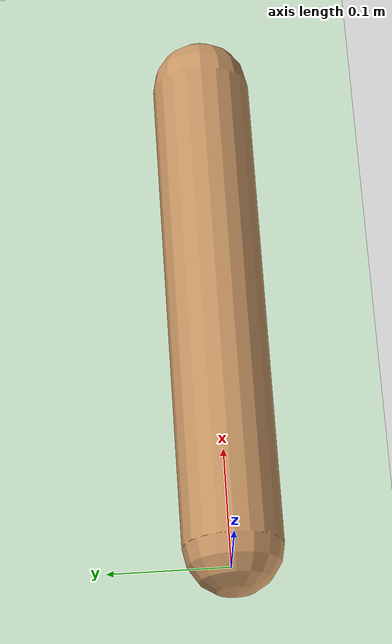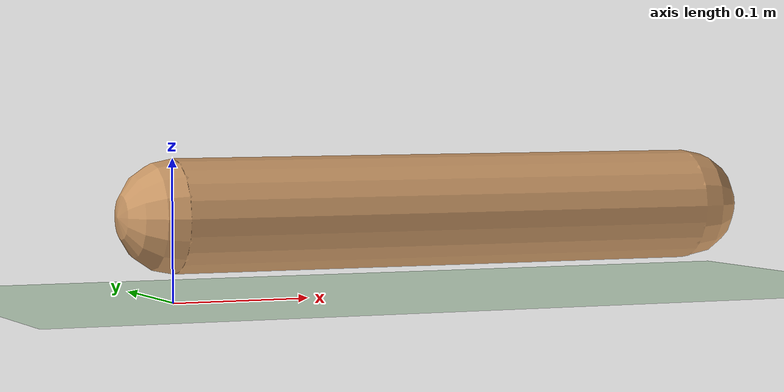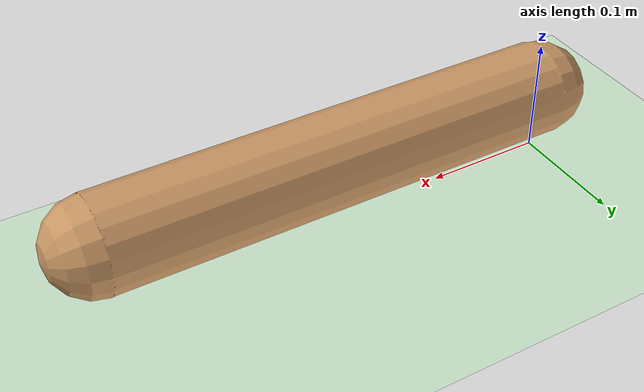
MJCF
<mujoco model="example">
<!-- 色の設定 -->
  <default>
    <geom rgba=".8 .6 .4 1"/>
  </default>

  <asset>
    <texture type="skybox" builtin="gradient" rgb1="1 1 1" rgb2=".6 .8 1" width="256" height="256"/>
  </asset>
<!-- x,y,z: 横、奥、高さ -->
  <worldbody>

    <geom pos="0 0 0" name="floor" type="plane" size="5 5 0.1" rgba="0.8 0.9 0.8 1"/>
    <light pos="0 1 1" dir="0 -1 -1" diffuse="1 1 1"/>
    <body pos="0 0 0.06">
      <joint name ="shoulder" type="hinge" axis="0 0 1" range="0 90"/>
      <geom type="capsule" size="0.04" fromto="0 0 0  .4 0 0" mass="3.0"/>
      <body pos=".4 0 0">
      </body>
    </body>
  </worldbody>
  <actuator>
		<motor ctrllimited="true" ctrlrange="-1.0 1.0" gear="200.0" joint="shoulder"/>
	</actuator>
</mujoco>
